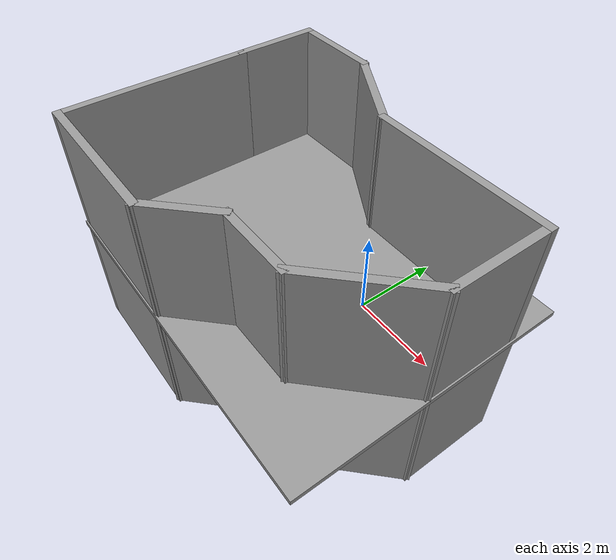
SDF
<?xml version='1.0'?>
<sdf version='1.7'>
  <model name='new_wall'>
    <pose>0.184971 -1.79455 0 0 -0 0</pose>
    <link name='Floor_0'>
      <collision name='Floor_0_Collision'>
        <geometry>
          <box>
            <size>6.82058 5.42304 0.1</size>
          </box>
        </geometry>
        <pose>0 0 0.05 0 -0 0</pose>
      </collision>
      <visual name='Floor_0_Visual'>
        <pose>0 0 0.05 0 -0 0</pose>
        <geometry>
          <box>
            <size>6.82058 5.42304 0.1</size>
          </box>
        </geometry>
        <material>
          <script>
            <uri>file://media/materials/scripts/gazebo.material</uri>
            <name>Gazebo/Grey</name>
          </script>
          <ambient>1 1 1 1</ambient>
        </material>
        <meta>
          <layer>1</layer>
        </meta>
      </visual>
      <pose>-0 0 2.5 0 -0 0</pose>
    </link>
    <link name='Wall_0'>
      <collision name='Wall_0_Collision'>
        <geometry>
          <box>
            <size>3.75 0.15 2.5</size>
          </box>
        </geometry>
        <pose>0 0 1.25 0 -0 0</pose>
      </collision>
      <visual name='Wall_0_Visual'>
        <pose>0 0 1.25 0 -0 0</pose>
        <geometry>
          <box>
            <size>3.75 0.15 2.5</size>
          </box>
        </geometry>
        <material>
          <script>
            <uri>file://media/materials/scripts/gazebo.material</uri>
            <name>Gazebo/Grey</name>
          </script>
          <ambient>1 1 1 1</ambient>
        </material>
        <meta>
          <layer>0</layer>
        </meta>
      </visual>
      <pose>-3.33497 -0.805452 0 0 -0 -1.5708</pose>
    </link>
    <link name='Wall_1'>
      <collision name='Wall_1_Collision'>
        <geometry>
          <box>
            <size>3 0.15 2.5</size>
          </box>
        </geometry>
        <pose>0 0 1.25 0 -0 0</pose>
      </collision>
      <visual name='Wall_1_Visual'>
        <pose>0 0 1.25 0 -0 0</pose>
        <geometry>
          <box>
            <size>3 0.15 2.5</size>
          </box>
        </geometry>
        <material>
          <script>
            <uri>file://media/materials/scripts/gazebo.material</uri>
            <name>Gazebo/Grey</name>
          </script>
          <ambient>1 1 1 1</ambient>
        </material>
        <meta>
          <layer>0</layer>
        </meta>
      </visual>
      <pose>-1.90997 -2.60545 0 0 -0 0</pose>
    </link>
    <link name='Wall_10'>
      <collision name='Wall_10_Collision'>
        <geometry>
          <box>
            <size>1.5 0.15 2.5</size>
          </box>
        </geometry>
        <pose>0 0 1.25 0 -0 0</pose>
      </collision>
      <visual name='Wall_10_Visual'>
        <pose>0 0 1.25 0 -0 0</pose>
        <geometry>
          <box>
            <size>1.5 0.15 2.5</size>
          </box>
        </geometry>
        <material>
          <script>
            <uri>file://media/materials/scripts/gazebo.material</uri>
            <name>Gazebo/Grey</name>
          </script>
          <ambient>1 1 1 1</ambient>
        </material>
        <meta>
          <layer>1</layer>
        </meta>
      </visual>
      <pose>1.14462 -1.65086 2.5 0 -0 0</pose>
    </link>
    <link name='Wall_11'>
      <collision name='Wall_11_Collision'>
        <geometry>
          <box>
            <size>2.25 0.15 2.5</size>
          </box>
        </geometry>
        <pose>0 0 1.25 0 -0 0</pose>
      </collision>
      <visual name='Wall_11_Visual'>
        <pose>0 0 1.25 0 -0 0</pose>
        <geometry>
          <box>
            <size>2.25 0.15 2.5</size>
          </box>
        </geometry>
        <material>
          <script>
            <uri>file://media/materials/scripts/gazebo.material</uri>
            <name>Gazebo/Grey</name>
          </script>
          <ambient>1 1 1 1</ambient>
        </material>
        <meta>
          <layer>1</layer>
        </meta>
      </visual>
      <pose>2.56209 -0.908396 2.5 0 -0 0.785398</pose>
    </link>
    <link name='Wall_12'>
      <collision name='Wall_12_Collision'>
        <geometry>
          <box>
            <size>2 0.15 2.5</size>
          </box>
        </geometry>
        <pose>0 0 1.25 0 -0 0</pose>
      </collision>
      <visual name='Wall_12_Visual'>
        <pose>0 0 1.25 0 -0 0</pose>
        <geometry>
          <box>
            <size>2 0.15 2.5</size>
          </box>
        </geometry>
        <material>
          <script>
            <uri>file://media/materials/scripts/gazebo.material</uri>
            <name>Gazebo/Grey</name>
          </script>
          <ambient>1 1 1 1</ambient>
        </material>
        <meta>
          <layer>1</layer>
        </meta>
      </visual>
      <pose>3.30455 0.759066 2.5 0 -0 1.5708</pose>
    </link>
    <link name='Wall_13'>
      <collision name='Wall_13_Collision'>
        <geometry>
          <box>
            <size>3.5 0.15 2.5</size>
          </box>
        </geometry>
        <pose>0 0 1.25 0 -0 0</pose>
      </collision>
      <visual name='Wall_13_Visual'>
        <pose>0 0 1.25 0 -0 0</pose>
        <geometry>
          <box>
            <size>3.5 0.15 2.5</size>
          </box>
        </geometry>
        <material>
          <script>
            <uri>file://media/materials/scripts/gazebo.material</uri>
            <name>Gazebo/Grey</name>
          </script>
          <ambient>1 1 1 1</ambient>
        </material>
        <meta>
          <layer>1</layer>
        </meta>
      </visual>
      <pose>1.62955 1.68407 2.5 0 -0 3.14159</pose>
    </link>
    <link name='Wall_14'>
      <collision name='Wall_14_Collision'>
        <geometry>
          <box>
            <size>2 0.15 2.5</size>
          </box>
        </geometry>
        <pose>0 0 1.25 0 -0 0</pose>
      </collision>
      <visual name='Wall_14_Visual'>
        <pose>0 0 1.25 0 -0 0</pose>
        <geometry>
          <box>
            <size>2 0.15 2.5</size>
          </box>
        </geometry>
        <material>
          <script>
            <uri>file://media/materials/scripts/gazebo.material</uri>
            <name>Gazebo/Grey</name>
          </script>
          <ambient>1 1 1 1</ambient>
        </material>
        <meta>
          <layer>1</layer>
        </meta>
      </visual>
      <pose>-0.846526 2.14657 2.5 0 -0 2.61799</pose>
    </link>
    <link name='Wall_18'>
      <collision name='Wall_18_Collision'>
        <geometry>
          <box>
            <size>1.75 0.15 2.5</size>
          </box>
        </geometry>
        <pose>0 0 1.25 0 -0 0</pose>
      </collision>
      <visual name='Wall_18_Visual'>
        <pose>0 0 1.25 0 -0 0</pose>
        <geometry>
          <box>
            <size>1.75 0.15 2.5</size>
          </box>
        </geometry>
        <material>
          <script>
            <uri>file://media/materials/scripts/gazebo.material</uri>
            <name>Gazebo/Grey</name>
          </script>
          <ambient>1 1 1 1</ambient>
        </material>
        <meta>
          <layer>1</layer>
        </meta>
      </visual>
      <pose>-3.33497 1.79455 2.5 0 -0 1.5708</pose>
    </link>
    <link name='Wall_19'>
      <collision name='Wall_19_Collision'>
        <geometry>
          <box>
            <size>1.83743 0.15 2.5</size>
          </box>
        </geometry>
        <pose>0 0 1.25 0 -0 0</pose>
      </collision>
      <visual name='Wall_19_Visual'>
        <pose>0 0 1.25 0 -0 0</pose>
        <geometry>
          <box>
            <size>1.83743 0.15 2.5</size>
          </box>
        </geometry>
        <material>
          <script>
            <uri>file://media/materials/scripts/gazebo.material</uri>
            <name>Gazebo/Grey</name>
          </script>
          <ambient>1 1 1 1</ambient>
        </material>
        <meta>
          <layer>1</layer>
        </meta>
      </visual>
      <pose>-2.49128 2.60181 2.5 0 -0 0.008604</pose>
    </link>
    <link name='Wall_2'>
      <collision name='Wall_2_Collision'>
        <geometry>
          <box>
            <size>1.5 0.15 2.5</size>
          </box>
        </geometry>
        <pose>0 0 1.25 0 -0 0</pose>
      </collision>
      <visual name='Wall_2_Visual'>
        <pose>0 0 1.25 0 -0 0</pose>
        <geometry>
          <box>
            <size>1.5 0.15 2.5</size>
          </box>
        </geometry>
        <material>
          <script>
            <uri>file://media/materials/scripts/gazebo.material</uri>
            <name>Gazebo/Grey</name>
          </script>
          <ambient>1 1 1 1</ambient>
        </material>
        <meta>
          <layer>0</layer>
        </meta>
      </visual>
      <pose>-0.007674 -2.12816 0 0 -0 0.785398</pose>
    </link>
    <link name='Wall_3'>
      <collision name='Wall_3_Collision'>
        <geometry>
          <box>
            <size>1.5 0.15 2.5</size>
          </box>
        </geometry>
        <pose>0 0 1.25 0 -0 0</pose>
      </collision>
      <visual name='Wall_3_Visual'>
        <pose>0 0 1.25 0 -0 0</pose>
        <geometry>
          <box>
            <size>1.5 0.15 2.5</size>
          </box>
        </geometry>
        <material>
          <script>
            <uri>file://media/materials/scripts/gazebo.material</uri>
            <name>Gazebo/Grey</name>
          </script>
          <ambient>1 1 1 1</ambient>
        </material>
        <meta>
          <layer>0</layer>
        </meta>
      </visual>
      <pose>1.14462 -1.65086 0 0 -0 0</pose>
    </link>
    <link name='Wall_4'>
      <collision name='Wall_4_Collision'>
        <geometry>
          <box>
            <size>2.25 0.15 2.5</size>
          </box>
        </geometry>
        <pose>0 0 1.25 0 -0 0</pose>
      </collision>
      <visual name='Wall_4_Visual'>
        <pose>0 0 1.25 0 -0 0</pose>
        <geometry>
          <box>
            <size>2.25 0.15 2.5</size>
          </box>
        </geometry>
        <material>
          <script>
            <uri>file://media/materials/scripts/gazebo.material</uri>
            <name>Gazebo/Grey</name>
          </script>
          <ambient>1 1 1 1</ambient>
        </material>
        <meta>
          <layer>0</layer>
        </meta>
      </visual>
      <pose>2.56209 -0.908396 0 0 -0 0.785398</pose>
    </link>
    <link name='Wall_5'>
      <collision name='Wall_5_Collision'>
        <geometry>
          <box>
            <size>2 0.15 2.5</size>
          </box>
        </geometry>
        <pose>0 0 1.25 0 -0 0</pose>
      </collision>
      <visual name='Wall_5_Visual'>
        <pose>0 0 1.25 0 -0 0</pose>
        <geometry>
          <box>
            <size>2 0.15 2.5</size>
          </box>
        </geometry>
        <material>
          <script>
            <uri>file://media/materials/scripts/gazebo.material</uri>
            <name>Gazebo/Grey</name>
          </script>
          <ambient>1 1 1 1</ambient>
        </material>
        <meta>
          <layer>0</layer>
        </meta>
      </visual>
      <pose>3.30455 0.759066 0 0 -0 1.5708</pose>
    </link>
    <link name='Wall_7'>
      <collision name='Wall_7_Collision'>
        <geometry>
          <box>
            <size>3.75 0.15 2.5</size>
          </box>
        </geometry>
        <pose>0 0 1.25 0 -0 0</pose>
      </collision>
      <visual name='Wall_7_Visual'>
        <pose>0 0 1.25 0 -0 0</pose>
        <geometry>
          <box>
            <size>3.75 0.15 2.5</size>
          </box>
        </geometry>
        <material>
          <script>
            <uri>file://media/materials/scripts/gazebo.material</uri>
            <name>Gazebo/Grey</name>
          </script>
          <ambient>1 1 1 1</ambient>
        </material>
        <meta>
          <layer>1</layer>
        </meta>
      </visual>
      <pose>-3.33497 -0.805452 2.5 0 -0 -1.5708</pose>
    </link>
    <link name='Wall_8'>
      <collision name='Wall_8_Collision'>
        <geometry>
          <box>
            <size>3 0.15 2.5</size>
          </box>
        </geometry>
        <pose>0 0 1.25 0 -0 0</pose>
      </collision>
      <visual name='Wall_8_Visual'>
        <pose>0 0 1.25 0 -0 0</pose>
        <geometry>
          <box>
            <size>3 0.15 2.5</size>
          </box>
        </geometry>
        <material>
          <script>
            <uri>file://media/materials/scripts/gazebo.material</uri>
            <name>Gazebo/Grey</name>
          </script>
          <ambient>1 1 1 1</ambient>
        </material>
        <meta>
          <layer>1</layer>
        </meta>
      </visual>
      <pose>-1.90997 -2.60545 2.5 0 -0 0</pose>
    </link>
    <link name='Wall_9'>
      <collision name='Wall_9_Collision'>
        <geometry>
          <box>
            <size>1.5 0.15 2.5</size>
          </box>
        </geometry>
        <pose>0 0 1.25 0 -0 0</pose>
      </collision>
      <visual name='Wall_9_Visual'>
        <pose>0 0 1.25 0 -0 0</pose>
        <geometry>
          <box>
            <size>1.5 0.15 2.5</size>
          </box>
        </geometry>
        <material>
          <script>
            <uri>file://media/materials/scripts/gazebo.material</uri>
            <name>Gazebo/Grey</name>
          </script>
          <ambient>1 1 1 1</ambient>
        </material>
        <meta>
          <layer>1</layer>
        </meta>
      </visual>
      <pose>-0.007674 -2.12816 2.5 0 -0 0.785398</pose>
    </link>
    <static>1</static>
  </model>
</sdf>
